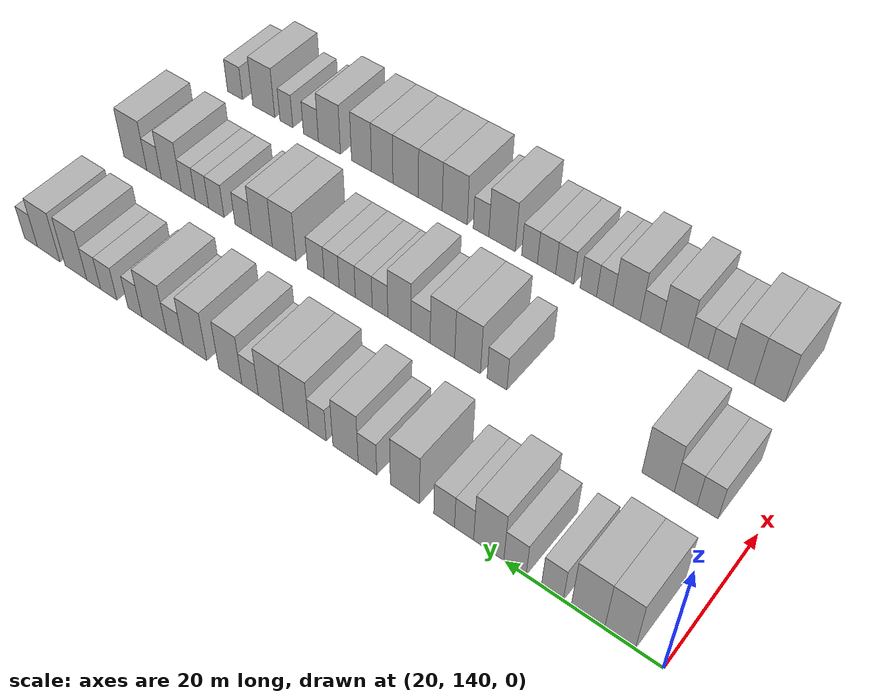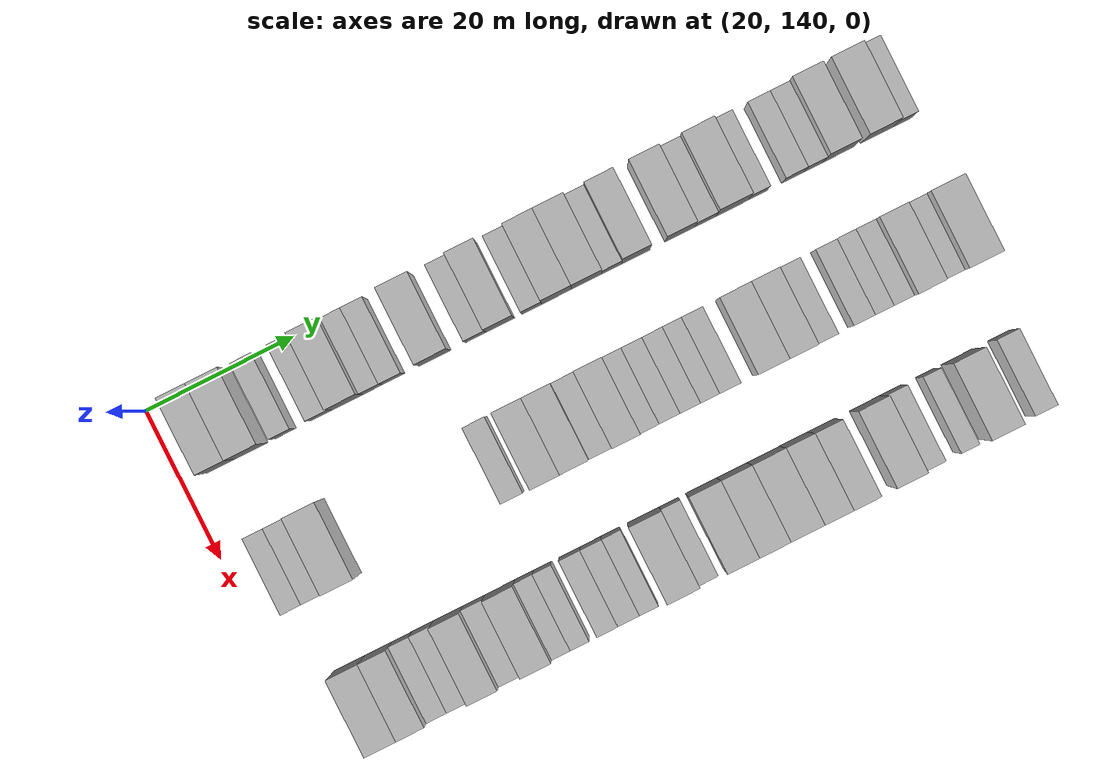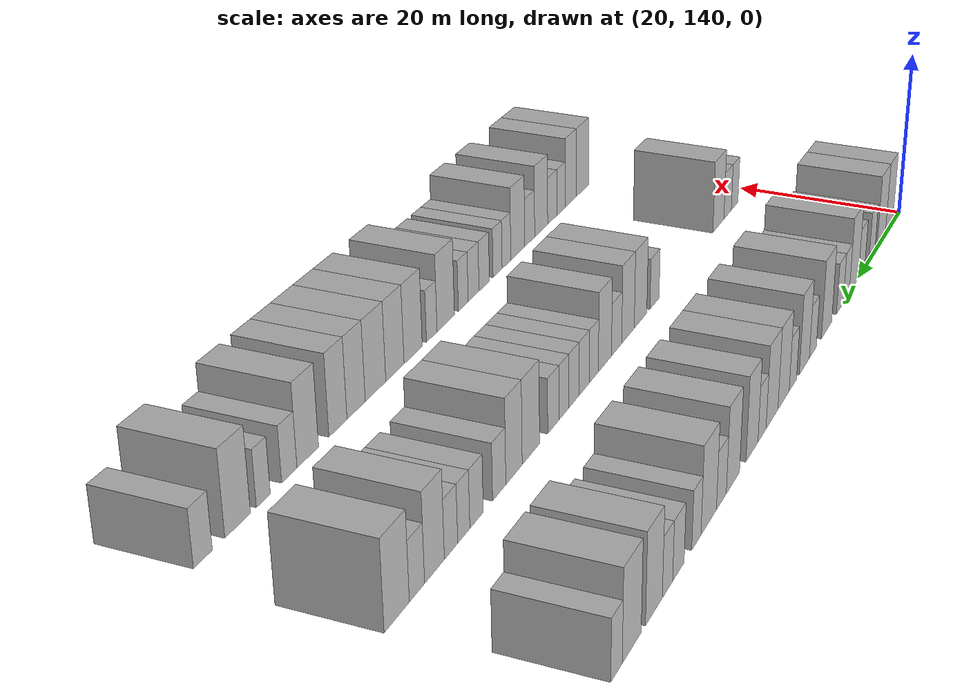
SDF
<sdf version="1.6">
 <world name="default">
  <model name="building_101">
   <static>1</static>
   <pose>25.0000 145.2894 0 0.000000 0.000000 0.000000</pose>
   <link name="link">
    <pose>0 0 4.50 0 0 0</pose>
    <collision name="collision"><geometry><box><size>10.0000 3.7814 9.0000</size></box></geometry></collision>
    <visual name="visual">
     <cast_shadows>0</cast_shadows>
     <geometry><box><size>10.0000 3.7814 9.0000</size></box></geometry>
     <material>
      <script>
       <uri>model://HANNAS_wall/materials/scripts</uri>
       <uri>model://HANNAS_wall/materials/textures</uri>
       <name>vrc/HANNAS_wall</name>
      </script>
     </material>
    </visual>
   </link>
  </model>
  <model name="building_102">
   <static>1</static>
   <pose>25.0000 149.2871 0 0.000000 0.000000 0.000000</pose>
   <link name="link">
    <pose>0 0 4.50 0 0 0</pose>
    <collision name="collision"><geometry><box><size>10.0000 4.2140 9.0000</size></box></geometry></collision>
    <visual name="visual">
     <cast_shadows>0</cast_shadows>
     <geometry><box><size>10.0000 4.2140 9.0000</size></box></geometry>
     <material>
      <script>
       <uri>model://HANNAS_wall/materials/scripts</uri>
       <uri>model://HANNAS_wall/materials/textures</uri>
       <name>vrc/HANNAS_wall</name>
      </script>
     </material>
    </visual>
   </link>
  </model>
  <model name="building_103">
   <static>1</static>
   <pose>25.0000 153.8083 0 0.000000 0.000000 0.000000</pose>
   <link name="link">
    <pose>0 0 3.00 0 0 0</pose>
    <collision name="collision"><geometry><box><size>10.0000 2.8283 6.0000</size></box></geometry></collision>
    <visual name="visual">
     <cast_shadows>0</cast_shadows>
     <geometry><box><size>10.0000 2.8283 6.0000</size></box></geometry>
     <material>
      <script>
       <uri>model://HANNAS_wall/materials/scripts</uri>
       <uri>model://HANNAS_wall/materials/textures</uri>
       <name>vrc/HANNAS_wall</name>
      </script>
     </material>
    </visual>
   </link>
  </model>
  <model name="building_104">
   <static>1</static>
   <pose>25.0000 158.7008 0 0.000000 0.000000 0.000000</pose>
   <link name="link">
    <pose>0 0 3.00 0 0 0</pose>
    <collision name="collision"><geometry><box><size>10.0000 2.9569 6.0000</size></box></geometry></collision>
    <visual name="visual">
     <cast_shadows>0</cast_shadows>
     <geometry><box><size>10.0000 2.9569 6.0000</size></box></geometry>
     <material>
      <script>
       <uri>model://HANNAS_wall/materials/scripts</uri>
       <uri>model://HANNAS_wall/materials/textures</uri>
       <name>vrc/HANNAS_wall</name>
      </script>
     </material>
    </visual>
   </link>
  </model>
  <model name="building_105">
   <static>1</static>
   <pose>25.0000 162.2158 0 0.000000 0.000000 0.000000</pose>
   <link name="link">
    <pose>0 0 4.50 0 0 0</pose>
    <collision name="collision"><geometry><box><size>10.0000 4.0731 9.0000</size></box></geometry></collision>
    <visual name="visual">
     <cast_shadows>0</cast_shadows>
     <geometry><box><size>10.0000 4.0731 9.0000</size></box></geometry>
     <material>
      <script>
       <uri>model://HANNAS_wall/materials/scripts</uri>
       <uri>model://HANNAS_wall/materials/textures</uri>
       <name>vrc/HANNAS_wall</name>
      </script>
     </material>
    </visual>
   </link>
  </model>
  <model name="building_106">
   <static>1</static>
   <pose>25.0000 165.5660 0 0.000000 0.000000 0.000000</pose>
   <link name="link">
    <pose>0 0 3.00 0 0 0</pose>
    <collision name="collision"><geometry><box><size>10.0000 2.6272 6.0000</size></box></geometry></collision>
    <visual name="visual">
     <cast_shadows>0</cast_shadows>
     <geometry><box><size>10.0000 2.6272 6.0000</size></box></geometry>
     <material>
      <script>
       <uri>model://HANNAS_wall/materials/scripts</uri>
       <uri>model://HANNAS_wall/materials/textures</uri>
       <name>vrc/HANNAS_wall</name>
      </script>
     </material>
    </visual>
   </link>
  </model>
  <model name="building_107">
   <static>1</static>
   <pose>25.0000 168.3294 0 0.000000 0.000000 0.000000</pose>
   <link name="link">
    <pose>0 0 3.00 0 0 0</pose>
    <collision name="collision"><geometry><box><size>10.0000 2.8996 6.0000</size></box></geometry></collision>
    <visual name="visual">
     <cast_shadows>0</cast_shadows>
     <geometry><box><size>10.0000 2.8996 6.0000</size></box></geometry>
     <material>
      <script>
       <uri>model://HANNAS_wall/materials/scripts</uri>
       <uri>model://HANNAS_wall/materials/textures</uri>
       <name>vrc/HANNAS_wall</name>
      </script>
     </material>
    </visual>
   </link>
  </model>
  <model name="building_108">
   <static>1</static>
   <pose>25.0000 173.8782 0 0.000000 0.000000 0.000000</pose>
   <link name="link">
    <pose>0 0 4.50 0 0 0</pose>
    <collision name="collision"><geometry><box><size>10.0000 4.1981 9.0000</size></box></geometry></collision>
    <visual name="visual">
     <cast_shadows>0</cast_shadows>
     <geometry><box><size>10.0000 4.1981 9.0000</size></box></geometry>
     <material>
      <script>
       <uri>model://HANNAS_wall/materials/scripts</uri>
       <uri>model://HANNAS_wall/materials/textures</uri>
       <name>vrc/HANNAS_wall</name>
      </script>
     </material>
    </visual>
   </link>
  </model>
  <model name="building_109">
   <static>1</static>
   <pose>25.0000 179.3486 0 0.000000 0.000000 0.000000</pose>
   <link name="link">
    <pose>0 0 3.00 0 0 0</pose>
    <collision name="collision"><geometry><box><size>10.0000 2.7426 6.0000</size></box></geometry></collision>
    <visual name="visual">
     <cast_shadows>0</cast_shadows>
     <geometry><box><size>10.0000 2.7426 6.0000</size></box></geometry>
     <material>
      <script>
       <uri>model://HANNAS_wall/materials/scripts</uri>
       <uri>model://HANNAS_wall/materials/textures</uri>
       <name>vrc/HANNAS_wall</name>
      </script>
     </material>
    </visual>
   </link>
  </model>
  <model name="building_110">
   <static>1</static>
   <pose>25.0000 182.6232 0 0.000000 0.000000 0.000000</pose>
   <link name="link">
    <pose>0 0 4.50 0 0 0</pose>
    <collision name="collision"><geometry><box><size>10.0000 3.8066 9.0000</size></box></geometry></collision>
    <visual name="visual">
     <cast_shadows>0</cast_shadows>
     <geometry><box><size>10.0000 3.8066 9.0000</size></box></geometry>
     <material>
      <script>
       <uri>model://HANNAS_wall/materials/scripts</uri>
       <uri>model://HANNAS_wall/materials/textures</uri>
       <name>vrc/HANNAS_wall</name>
      </script>
     </material>
    </visual>
   </link>
  </model>
  <model name="building_111">
   <static>1</static>
   <pose>25.0000 186.8645 0 0.000000 0.000000 0.000000</pose>
   <link name="link">
    <pose>0 0 3.00 0 0 0</pose>
    <collision name="collision"><geometry><box><size>10.0000 2.6759 6.0000</size></box></geometry></collision>
    <visual name="visual">
     <cast_shadows>0</cast_shadows>
     <geometry><box><size>10.0000 2.6759 6.0000</size></box></geometry>
     <material>
      <script>
       <uri>model://HANNAS_wall/materials/scripts</uri>
       <uri>model://HANNAS_wall/materials/textures</uri>
       <name>vrc/HANNAS_wall</name>
      </script>
     </material>
    </visual>
   </link>
  </model>
  <model name="building_112">
   <static>1</static>
   <pose>25.0000 190.1864 0 0.000000 0.000000 0.000000</pose>
   <link name="link">
    <pose>0 0 4.50 0 0 0</pose>
    <collision name="collision"><geometry><box><size>10.0000 3.9680 9.0000</size></box></geometry></collision>
    <visual name="visual">
     <cast_shadows>0</cast_shadows>
     <geometry><box><size>10.0000 3.9680 9.0000</size></box></geometry>
     <material>
      <script>
       <uri>model://HANNAS_wall/materials/scripts</uri>
       <uri>model://HANNAS_wall/materials/textures</uri>
       <name>vrc/HANNAS_wall</name>
      </script>
     </material>
    </visual>
   </link>
  </model>
  <model name="building_113">
   <static>1</static>
   <pose>25.0000 194.1858 0 0.000000 0.000000 0.000000</pose>
   <link name="link">
    <pose>0 0 4.50 0 0 0</pose>
    <collision name="collision"><geometry><box><size>10.0000 4.0307 9.0000</size></box></geometry></collision>
    <visual name="visual">
     <cast_shadows>0</cast_shadows>
     <geometry><box><size>10.0000 4.0307 9.0000</size></box></geometry>
     <material>
      <script>
       <uri>model://HANNAS_wall/materials/scripts</uri>
       <uri>model://HANNAS_wall/materials/textures</uri>
       <name>vrc/HANNAS_wall</name>
      </script>
     </material>
    </visual>
   </link>
  </model>
  <model name="building_114">
   <static>1</static>
   <pose>25.0000 197.5328 0 0.000000 0.000000 0.000000</pose>
   <link name="link">
    <pose>0 0 3.00 0 0 0</pose>
    <collision name="collision"><geometry><box><size>10.0000 2.6633 6.0000</size></box></geometry></collision>
    <visual name="visual">
     <cast_shadows>0</cast_shadows>
     <geometry><box><size>10.0000 2.6633 6.0000</size></box></geometry>
     <material>
      <script>
       <uri>model://HANNAS_wall/materials/scripts</uri>
       <uri>model://HANNAS_wall/materials/textures</uri>
       <name>vrc/HANNAS_wall</name>
      </script>
     </material>
    </visual>
   </link>
  </model>
  <model name="building_115">
   <static>1</static>
   <pose>25.0000 200.7746 0 0.000000 0.000000 0.000000</pose>
   <link name="link">
    <pose>0 0 4.50 0 0 0</pose>
    <collision name="collision"><geometry><box><size>10.0000 3.8202 9.0000</size></box></geometry></collision>
    <visual name="visual">
     <cast_shadows>0</cast_shadows>
     <geometry><box><size>10.0000 3.8202 9.0000</size></box></geometry>
     <material>
      <script>
       <uri>model://HANNAS_wall/materials/scripts</uri>
       <uri>model://HANNAS_wall/materials/textures</uri>
       <name>vrc/HANNAS_wall</name>
      </script>
     </material>
    </visual>
   </link>
  </model>
  <model name="building_116">
   <static>1</static>
   <pose>25.0000 206.6756 0 0.000000 0.000000 0.000000</pose>
   <link name="link">
    <pose>0 0 4.50 0 0 0</pose>
    <collision name="collision"><geometry><box><size>10.0000 3.9818 9.0000</size></box></geometry></collision>
    <visual name="visual">
     <cast_shadows>0</cast_shadows>
     <geometry><box><size>10.0000 3.9818 9.0000</size></box></geometry>
     <material>
      <script>
       <uri>model://HANNAS_wall/materials/scripts</uri>
       <uri>model://HANNAS_wall/materials/textures</uri>
       <name>vrc/HANNAS_wall</name>
      </script>
     </material>
    </visual>
   </link>
  </model>
  <model name="building_117">
   <static>1</static>
   <pose>25.0000 210.1035 0 0.000000 0.000000 0.000000</pose>
   <link name="link">
    <pose>0 0 3.00 0 0 0</pose>
    <collision name="collision"><geometry><box><size>10.0000 2.8740 6.0000</size></box></geometry></collision>
    <visual name="visual">
     <cast_shadows>0</cast_shadows>
     <geometry><box><size>10.0000 2.8740 6.0000</size></box></geometry>
     <material>
      <script>
       <uri>model://HANNAS_wall/materials/scripts</uri>
       <uri>model://HANNAS_wall/materials/textures</uri>
       <name>vrc/HANNAS_wall</name>
      </script>
     </material>
    </visual>
   </link>
  </model>
  <model name="building_118">
   <static>1</static>
   <pose>25.0000 213.7059 0 0.000000 0.000000 0.000000</pose>
   <link name="link">
    <pose>0 0 4.50 0 0 0</pose>
    <collision name="collision"><geometry><box><size>10.0000 4.3307 9.0000</size></box></geometry></collision>
    <visual name="visual">
     <cast_shadows>0</cast_shadows>
     <geometry><box><size>10.0000 4.3307 9.0000</size></box></geometry>
     <material>
      <script>
       <uri>model://HANNAS_wall/materials/scripts</uri>
       <uri>model://HANNAS_wall/materials/textures</uri>
       <name>vrc/HANNAS_wall</name>
      </script>
     </material>
    </visual>
   </link>
  </model>
  <model name="building_119">
   <static>1</static>
   <pose>25.0000 217.1237 0 0.000000 0.000000 0.000000</pose>
   <link name="link">
    <pose>0 0 3.00 0 0 0</pose>
    <collision name="collision"><geometry><box><size>10.0000 2.5049 6.0000</size></box></geometry></collision>
    <visual name="visual">
     <cast_shadows>0</cast_shadows>
     <geometry><box><size>10.0000 2.5049 6.0000</size></box></geometry>
     <material>
      <script>
       <uri>model://HANNAS_wall/materials/scripts</uri>
       <uri>model://HANNAS_wall/materials/textures</uri>
       <name>vrc/HANNAS_wall</name>
      </script>
     </material>
    </visual>
   </link>
  </model>
  <model name="building_120">
   <static>1</static>
   <pose>25.0000 221.8567 0 0.000000 0.000000 0.000000</pose>
   <link name="link">
    <pose>0 0 3.00 0 0 0</pose>
    <collision name="collision"><geometry><box><size>10.0000 2.9611 6.0000</size></box></geometry></collision>
    <visual name="visual">
     <cast_shadows>0</cast_shadows>
     <geometry><box><size>10.0000 2.9611 6.0000</size></box></geometry>
     <material>
      <script>
       <uri>model://HANNAS_wall/materials/scripts</uri>
       <uri>model://HANNAS_wall/materials/textures</uri>
       <name>vrc/HANNAS_wall</name>
      </script>
     </material>
    </visual>
   </link>
  </model>
  <model name="building_121">
   <static>1</static>
   <pose>25.0000 224.6244 0 0.000000 0.000000 0.000000</pose>
   <link name="link">
    <pose>0 0 3.00 0 0 0</pose>
    <collision name="collision"><geometry><box><size>10.0000 2.5744 6.0000</size></box></geometry></collision>
    <visual name="visual">
     <cast_shadows>0</cast_shadows>
     <geometry><box><size>10.0000 2.5744 6.0000</size></box></geometry>
     <material>
      <script>
       <uri>model://HANNAS_wall/materials/scripts</uri>
       <uri>model://HANNAS_wall/materials/textures</uri>
       <name>vrc/HANNAS_wall</name>
      </script>
     </material>
    </visual>
   </link>
  </model>
  <model name="building_122">
   <static>1</static>
   <pose>25.0000 227.9382 0 0.000000 0.000000 0.000000</pose>
   <link name="link">
    <pose>0 0 4.50 0 0 0</pose>
    <collision name="collision"><geometry><box><size>10.0000 4.0531 9.0000</size></box></geometry></collision>
    <visual name="visual">
     <cast_shadows>0</cast_shadows>
     <geometry><box><size>10.0000 4.0531 9.0000</size></box></geometry>
     <material>
      <script>
       <uri>model://HANNAS_wall/materials/scripts</uri>
       <uri>model://HANNAS_wall/materials/textures</uri>
       <name>vrc/HANNAS_wall</name>
      </script>
     </material>
    </visual>
   </link>
  </model>
  <model name="building_123">
   <static>1</static>
   <pose>25.0000 233.1161 0 0.000000 0.000000 0.000000</pose>
   <link name="link">
    <pose>0 0 4.50 0 0 0</pose>
    <collision name="collision"><geometry><box><size>10.0000 4.3026 9.0000</size></box></geometry></collision>
    <visual name="visual">
     <cast_shadows>0</cast_shadows>
     <geometry><box><size>10.0000 4.3026 9.0000</size></box></geometry>
     <material>
      <script>
       <uri>model://HANNAS_wall/materials/scripts</uri>
       <uri>model://HANNAS_wall/materials/textures</uri>
       <name>vrc/HANNAS_wall</name>
      </script>
     </material>
    </visual>
   </link>
  </model>
  <model name="building_124">
   <static>1</static>
   <pose>25.0000 236.5218 0 0.000000 0.000000 0.000000</pose>
   <link name="link">
    <pose>0 0 3.00 0 0 0</pose>
    <collision name="collision"><geometry><box><size>10.0000 2.5089 6.0000</size></box></geometry></collision>
    <visual name="visual">
     <cast_shadows>0</cast_shadows>
     <geometry><box><size>10.0000 2.5089 6.0000</size></box></geometry>
     <material>
      <script>
       <uri>model://HANNAS_wall/materials/scripts</uri>
       <uri>model://HANNAS_wall/materials/textures</uri>
       <name>vrc/HANNAS_wall</name>
      </script>
     </material>
    </visual>
   </link>
  </model>
  <model name="building_211">
   <static>1</static>
   <pose>44.0000 145.8019 0 0.000000 0.000000 0.000000</pose>
   <link name="link">
    <pose>0 0 3.00 0 0 0</pose>
    <collision name="collision"><geometry><box><size>10.0000 2.6907 6.0000</size></box></geometry></collision>
    <visual name="visual">
     <cast_shadows>0</cast_shadows>
     <geometry><box><size>10.0000 2.6907 6.0000</size></box></geometry>
     <material>
      <script>
       <uri>model://HANNAS_wall/materials/scripts</uri>
       <uri>model://HANNAS_wall/materials/textures</uri>
       <name>vrc/HANNAS_wall</name>
      </script>
     </material>
    </visual>
   </link>
  </model>
  <model name="building_212">
   <static>1</static>
   <pose>44.0000 148.6254 0 0.000000 0.000000 0.000000</pose>
   <link name="link">
    <pose>0 0 3.00 0 0 0</pose>
    <collision name="collision"><geometry><box><size>10.0000 2.9563 6.0000</size></box></geometry></collision>
    <visual name="visual">
     <cast_shadows>0</cast_shadows>
     <geometry><box><size>10.0000 2.9563 6.0000</size></box></geometry>
     <material>
      <script>
       <uri>model://HANNAS_wall/materials/scripts</uri>
       <uri>model://HANNAS_wall/materials/textures</uri>
       <name>vrc/HANNAS_wall</name>
      </script>
     </material>
    </visual>
   </link>
  </model>
  <model name="building_213">
   <static>1</static>
   <pose>44.0000 152.2397 0 0.000000 0.000000 0.000000</pose>
   <link name="link">
    <pose>0 0 4.50 0 0 0</pose>
    <collision name="collision"><geometry><box><size>10.0000 4.2723 9.0000</size></box></geometry></collision>
    <visual name="visual">
     <cast_shadows>0</cast_shadows>
     <geometry><box><size>10.0000 4.2723 9.0000</size></box></geometry>
     <material>
      <script>
       <uri>model://HANNAS_wall/materials/scripts</uri>
       <uri>model://HANNAS_wall/materials/textures</uri>
       <name>vrc/HANNAS_wall</name>
      </script>
     </material>
    </visual>
   </link>
  </model>
  <model name="building_214">
   <static>1</static>
   <pose>44.0000 174.7750 0 0.000000 0.000000 0.000000</pose>
   <link name="link">
    <pose>0 0 3.00 0 0 0</pose>
    <collision name="collision"><geometry><box><size>10.0000 2.9327 6.0000</size></box></geometry></collision>
    <visual name="visual">
     <cast_shadows>0</cast_shadows>
     <geometry><box><size>10.0000 2.9327 6.0000</size></box></geometry>
     <material>
      <script>
       <uri>model://HANNAS_wall/materials/scripts</uri>
       <uri>model://HANNAS_wall/materials/textures</uri>
       <name>vrc/HANNAS_wall</name>
      </script>
     </material>
    </visual>
   </link>
  </model>
  <model name="building_215">
   <static>1</static>
   <pose>44.0000 179.1906 0 0.000000 0.000000 0.000000</pose>
   <link name="link">
    <pose>0 0 4.50 0 0 0</pose>
    <collision name="collision"><geometry><box><size>10.0000 3.8986 9.0000</size></box></geometry></collision>
    <visual name="visual">
     <cast_shadows>0</cast_shadows>
     <geometry><box><size>10.0000 3.8986 9.0000</size></box></geometry>
     <material>
      <script>
       <uri>model://HANNAS_wall/materials/scripts</uri>
       <uri>model://HANNAS_wall/materials/textures</uri>
       <name>vrc/HANNAS_wall</name>
      </script>
     </material>
    </visual>
   </link>
  </model>
  <model name="building_216">
   <static>1</static>
   <pose>44.0000 183.0331 0 0.000000 0.000000 0.000000</pose>
   <link name="link">
    <pose>0 0 4.50 0 0 0</pose>
    <collision name="collision"><geometry><box><size>10.0000 3.7863 9.0000</size></box></geometry></collision>
    <visual name="visual">
     <cast_shadows>0</cast_shadows>
     <geometry><box><size>10.0000 3.7863 9.0000</size></box></geometry>
     <material>
      <script>
       <uri>model://HANNAS_wall/materials/scripts</uri>
       <uri>model://HANNAS_wall/materials/textures</uri>
       <name>vrc/HANNAS_wall</name>
      </script>
     </material>
    </visual>
   </link>
  </model>
  <model name="building_217">
   <static>1</static>
   <pose>44.0000 186.4161 0 0.000000 0.000000 0.000000</pose>
   <link name="link">
    <pose>0 0 3.00 0 0 0</pose>
    <collision name="collision"><geometry><box><size>10.0000 2.9795 6.0000</size></box></geometry></collision>
    <visual name="visual">
     <cast_shadows>0</cast_shadows>
     <geometry><box><size>10.0000 2.9795 6.0000</size></box></geometry>
     <material>
      <script>
       <uri>model://HANNAS_wall/materials/scripts</uri>
       <uri>model://HANNAS_wall/materials/textures</uri>
       <name>vrc/HANNAS_wall</name>
      </script>
     </material>
    </visual>
   </link>
  </model>
  <model name="building_218">
   <static>1</static>
   <pose>44.0000 189.7617 0 0.000000 0.000000 0.000000</pose>
   <link name="link">
    <pose>0 0 4.50 0 0 0</pose>
    <collision name="collision"><geometry><box><size>10.0000 3.7117 9.0000</size></box></geometry></collision>
    <visual name="visual">
     <cast_shadows>0</cast_shadows>
     <geometry><box><size>10.0000 3.7117 9.0000</size></box></geometry>
     <material>
      <script>
       <uri>model://HANNAS_wall/materials/scripts</uri>
       <uri>model://HANNAS_wall/materials/textures</uri>
       <name>vrc/HANNAS_wall</name>
      </script>
     </material>
    </visual>
   </link>
  </model>
  <model name="building_219">
   <static>1</static>
   <pose>44.0000 192.8788 0 0.000000 0.000000 0.000000</pose>
   <link name="link">
    <pose>0 0 3.00 0 0 0</pose>
    <collision name="collision"><geometry><box><size>10.0000 2.5225 6.0000</size></box></geometry></collision>
    <visual name="visual">
     <cast_shadows>0</cast_shadows>
     <geometry><box><size>10.0000 2.5225 6.0000</size></box></geometry>
     <material>
      <script>
       <uri>model://HANNAS_wall/materials/scripts</uri>
       <uri>model://HANNAS_wall/materials/textures</uri>
       <name>vrc/HANNAS_wall</name>
      </script>
     </material>
    </visual>
   </link>
  </model>
  <model name="building_220">
   <static>1</static>
   <pose>44.0000 195.5178 0 0.000000 0.000000 0.000000</pose>
   <link name="link">
    <pose>0 0 3.00 0 0 0</pose>
    <collision name="collision"><geometry><box><size>10.0000 2.7556 6.0000</size></box></geometry></collision>
    <visual name="visual">
     <cast_shadows>0</cast_shadows>
     <geometry><box><size>10.0000 2.7556 6.0000</size></box></geometry>
     <material>
      <script>
       <uri>model://HANNAS_wall/materials/scripts</uri>
       <uri>model://HANNAS_wall/materials/textures</uri>
       <name>vrc/HANNAS_wall</name>
      </script>
     </material>
    </visual>
   </link>
  </model>
  <model name="building_221">
   <static>1</static>
   <pose>44.0000 198.2379 0 0.000000 0.000000 0.000000</pose>
   <link name="link">
    <pose>0 0 3.00 0 0 0</pose>
    <collision name="collision"><geometry><box><size>10.0000 2.6845 6.0000</size></box></geometry></collision>
    <visual name="visual">
     <cast_shadows>0</cast_shadows>
     <geometry><box><size>10.0000 2.6845 6.0000</size></box></geometry>
     <material>
      <script>
       <uri>model://HANNAS_wall/materials/scripts</uri>
       <uri>model://HANNAS_wall/materials/textures</uri>
       <name>vrc/HANNAS_wall</name>
      </script>
     </material>
    </visual>
   </link>
  </model>
  <model name="building_222">
   <static>1</static>
   <pose>44.0000 200.8382 0 0.000000 0.000000 0.000000</pose>
   <link name="link">
    <pose>0 0 3.00 0 0 0</pose>
    <collision name="collision"><geometry><box><size>10.0000 2.5161 6.0000</size></box></geometry></collision>
    <visual name="visual">
     <cast_shadows>0</cast_shadows>
     <geometry><box><size>10.0000 2.5161 6.0000</size></box></geometry>
     <material>
      <script>
       <uri>model://HANNAS_wall/materials/scripts</uri>
       <uri>model://HANNAS_wall/materials/textures</uri>
       <name>vrc/HANNAS_wall</name>
      </script>
     </material>
    </visual>
   </link>
  </model>
  <model name="building_223">
   <static>1</static>
   <pose>44.0000 203.5032 0 0.000000 0.000000 0.000000</pose>
   <link name="link">
    <pose>0 0 3.00 0 0 0</pose>
    <collision name="collision"><geometry><box><size>10.0000 2.8139 6.0000</size></box></geometry></collision>
    <visual name="visual">
     <cast_shadows>0</cast_shadows>
     <geometry><box><size>10.0000 2.8139 6.0000</size></box></geometry>
     <material>
      <script>
       <uri>model://HANNAS_wall/materials/scripts</uri>
       <uri>model://HANNAS_wall/materials/textures</uri>
       <name>vrc/HANNAS_wall</name>
      </script>
     </material>
    </visual>
   </link>
  </model>
  <model name="building_224">
   <static>1</static>
   <pose>44.0000 208.9691 0 0.000000 0.000000 0.000000</pose>
   <link name="link">
    <pose>0 0 4.50 0 0 0</pose>
    <collision name="collision"><geometry><box><size>10.0000 4.1181 9.0000</size></box></geometry></collision>
    <visual name="visual">
     <cast_shadows>0</cast_shadows>
     <geometry><box><size>10.0000 4.1181 9.0000</size></box></geometry>
     <material>
      <script>
       <uri>model://HANNAS_wall/materials/scripts</uri>
       <uri>model://HANNAS_wall/materials/textures</uri>
       <name>vrc/HANNAS_wall</name>
      </script>
     </material>
    </visual>
   </link>
  </model>
  <model name="building_225">
   <static>1</static>
   <pose>44.0000 212.8925 0 0.000000 0.000000 0.000000</pose>
   <link name="link">
    <pose>0 0 4.50 0 0 0</pose>
    <collision name="collision"><geometry><box><size>10.0000 3.7287 9.0000</size></box></geometry></collision>
    <visual name="visual">
     <cast_shadows>0</cast_shadows>
     <geometry><box><size>10.0000 3.7287 9.0000</size></box></geometry>
     <material>
      <script>
       <uri>model://HANNAS_wall/materials/scripts</uri>
       <uri>model://HANNAS_wall/materials/textures</uri>
       <name>vrc/HANNAS_wall</name>
      </script>
     </material>
    </visual>
   </link>
  </model>
  <model name="building_226">
   <static>1</static>
   <pose>44.0000 216.2244 0 0.000000 0.000000 0.000000</pose>
   <link name="link">
    <pose>0 0 3.00 0 0 0</pose>
    <collision name="collision"><geometry><box><size>10.0000 2.9351 6.0000</size></box></geometry></collision>
    <visual name="visual">
     <cast_shadows>0</cast_shadows>
     <geometry><box><size>10.0000 2.9351 6.0000</size></box></geometry>
     <material>
      <script>
       <uri>model://HANNAS_wall/materials/scripts</uri>
       <uri>model://HANNAS_wall/materials/textures</uri>
       <name>vrc/HANNAS_wall</name>
      </script>
     </material>
    </visual>
   </link>
  </model>
  <model name="building_227">
   <static>1</static>
   <pose>44.0000 221.1040 0 0.000000 0.000000 0.000000</pose>
   <link name="link">
    <pose>0 0 3.00 0 0 0</pose>
    <collision name="collision"><geometry><box><size>10.0000 2.8240 6.0000</size></box></geometry></collision>
    <visual name="visual">
     <cast_shadows>0</cast_shadows>
     <geometry><box><size>10.0000 2.8240 6.0000</size></box></geometry>
     <material>
      <script>
       <uri>model://HANNAS_wall/materials/scripts</uri>
       <uri>model://HANNAS_wall/materials/textures</uri>
       <name>vrc/HANNAS_wall</name>
      </script>
     </material>
    </visual>
   </link>
  </model>
  <model name="building_228">
   <static>1</static>
   <pose>44.0000 223.7551 0 0.000000 0.000000 0.000000</pose>
   <link name="link">
    <pose>0 0 3.00 0 0 0</pose>
    <collision name="collision"><geometry><box><size>10.0000 2.4782 6.0000</size></box></geometry></collision>
    <visual name="visual">
     <cast_shadows>0</cast_shadows>
     <geometry><box><size>10.0000 2.4782 6.0000</size></box></geometry>
     <material>
      <script>
       <uri>model://HANNAS_wall/materials/scripts</uri>
       <uri>model://HANNAS_wall/materials/textures</uri>
       <name>vrc/HANNAS_wall</name>
      </script>
     </material>
    </visual>
   </link>
  </model>
  <model name="building_229">
   <static>1</static>
   <pose>44.0000 226.3191 0 0.000000 0.000000 0.000000</pose>
   <link name="link">
    <pose>0 0 3.00 0 0 0</pose>
    <collision name="collision"><geometry><box><size>10.0000 2.6498 6.0000</size></box></geometry></collision>
    <visual name="visual">
     <cast_shadows>0</cast_shadows>
     <geometry><box><size>10.0000 2.6498 6.0000</size></box></geometry>
     <material>
      <script>
       <uri>model://HANNAS_wall/materials/scripts</uri>
       <uri>model://HANNAS_wall/materials/textures</uri>
       <name>vrc/HANNAS_wall</name>
      </script>
     </material>
    </visual>
   </link>
  </model>
  <model name="building_230">
   <static>1</static>
   <pose>44.0000 229.5467 0 0.000000 0.000000 0.000000</pose>
   <link name="link">
    <pose>0 0 4.50 0 0 0</pose>
    <collision name="collision"><geometry><box><size>10.0000 3.8054 9.0000</size></box></geometry></collision>
    <visual name="visual">
     <cast_shadows>0</cast_shadows>
     <geometry><box><size>10.0000 3.8054 9.0000</size></box></geometry>
     <material>
      <script>
       <uri>model://HANNAS_wall/materials/scripts</uri>
       <uri>model://HANNAS_wall/materials/textures</uri>
       <name>vrc/HANNAS_wall</name>
      </script>
     </material>
    </visual>
   </link>
  </model>
  <model name="building_231">
   <static>1</static>
   <pose>44.0000 232.8650 0 0.000000 0.000000 0.000000</pose>
   <link name="link">
    <pose>0 0 3.00 0 0 0</pose>
    <collision name="collision"><geometry><box><size>10.0000 2.8312 6.0000</size></box></geometry></collision>
    <visual name="visual">
     <cast_shadows>0</cast_shadows>
     <geometry><box><size>10.0000 2.8312 6.0000</size></box></geometry>
     <material>
      <script>
       <uri>model://HANNAS_wall/materials/scripts</uri>
       <uri>model://HANNAS_wall/materials/textures</uri>
       <name>vrc/HANNAS_wall</name>
      </script>
     </material>
    </visual>
   </link>
  </model>
  <model name="building_232">
   <static>1</static>
   <pose>44.0000 236.5291 0 0.000000 0.000000 0.000000</pose>
   <link name="link">
    <pose>0 0 4.50 0 0 0</pose>
    <collision name="collision"><geometry><box><size>10.0000 4.4969 9.0000</size></box></geometry></collision>
    <visual name="visual">
     <cast_shadows>0</cast_shadows>
     <geometry><box><size>10.0000 4.4969 9.0000</size></box></geometry>
     <material>
      <script>
       <uri>model://HANNAS_wall/materials/scripts</uri>
       <uri>model://HANNAS_wall/materials/textures</uri>
       <name>vrc/HANNAS_wall</name>
      </script>
     </material>
    </visual>
   </link>
  </model>
  <model name="building_327">
   <static>1</static>
   <pose>63.0000 148.2934 0 0.000000 0.000000 0.000000</pose>
   <link name="link">
    <pose>0 0 4.50 0 0 0</pose>
    <collision name="collision"><geometry><box><size>10.0000 4.1395 9.0000</size></box></geometry></collision>
    <visual name="visual">
     <cast_shadows>0</cast_shadows>
     <geometry><box><size>10.0000 4.1395 9.0000</size></box></geometry>
     <material>
      <script>
       <uri>model://HANNAS_wall/materials/scripts</uri>
       <uri>model://HANNAS_wall/materials/textures</uri>
       <name>vrc/HANNAS_wall</name>
      </script>
     </material>
    </visual>
   </link>
  </model>
  <model name="building_328">
   <static>1</static>
   <pose>63.0000 152.1862 0 0.000000 0.000000 0.000000</pose>
   <link name="link">
    <pose>0 0 4.50 0 0 0</pose>
    <collision name="collision"><geometry><box><size>10.0000 3.6460 9.0000</size></box></geometry></collision>
    <visual name="visual">
     <cast_shadows>0</cast_shadows>
     <geometry><box><size>10.0000 3.6460 9.0000</size></box></geometry>
     <material>
      <script>
       <uri>model://HANNAS_wall/materials/scripts</uri>
       <uri>model://HANNAS_wall/materials/textures</uri>
       <name>vrc/HANNAS_wall</name>
      </script>
     </material>
    </visual>
   </link>
  </model>
  <model name="building_329">
   <static>1</static>
   <pose>63.0000 155.3519 0 0.000000 0.000000 0.000000</pose>
   <link name="link">
    <pose>0 0 3.00 0 0 0</pose>
    <collision name="collision"><geometry><box><size>10.0000 2.6855 6.0000</size></box></geometry></collision>
    <visual name="visual">
     <cast_shadows>0</cast_shadows>
     <geometry><box><size>10.0000 2.6855 6.0000</size></box></geometry>
     <material>
      <script>
       <uri>model://HANNAS_wall/materials/scripts</uri>
       <uri>model://HANNAS_wall/materials/textures</uri>
       <name>vrc/HANNAS_wall</name>
      </script>
     </material>
    </visual>
   </link>
  </model>
  <model name="building_330">
   <static>1</static>
   <pose>63.0000 158.1079 0 0.000000 0.000000 0.000000</pose>
   <link name="link">
    <pose>0 0 3.00 0 0 0</pose>
    <collision name="collision"><geometry><box><size>10.0000 2.8265 6.0000</size></box></geometry></collision>
    <visual name="visual">
     <cast_shadows>0</cast_shadows>
     <geometry><box><size>10.0000 2.8265 6.0000</size></box></geometry>
     <material>
      <script>
       <uri>model://HANNAS_wall/materials/scripts</uri>
       <uri>model://HANNAS_wall/materials/textures</uri>
       <name>vrc/HANNAS_wall</name>
      </script>
     </material>
    </visual>
   </link>
  </model>
  <model name="building_331">
   <static>1</static>
   <pose>63.0000 161.5038 0 0.000000 0.000000 0.000000</pose>
   <link name="link">
    <pose>0 0 4.50 0 0 0</pose>
    <collision name="collision"><geometry><box><size>10.0000 3.9652 9.0000</size></box></geometry></collision>
    <visual name="visual">
     <cast_shadows>0</cast_shadows>
     <geometry><box><size>10.0000 3.9652 9.0000</size></box></geometry>
     <material>
      <script>
       <uri>model://HANNAS_wall/materials/scripts</uri>
       <uri>model://HANNAS_wall/materials/textures</uri>
       <name>vrc/HANNAS_wall</name>
      </script>
     </material>
    </visual>
   </link>
  </model>
  <model name="building_332">
   <static>1</static>
   <pose>63.0000 164.9573 0 0.000000 0.000000 0.000000</pose>
   <link name="link">
    <pose>0 0 3.00 0 0 0</pose>
    <collision name="collision"><geometry><box><size>10.0000 2.9417 6.0000</size></box></geometry></collision>
    <visual name="visual">
     <cast_shadows>0</cast_shadows>
     <geometry><box><size>10.0000 2.9417 6.0000</size></box></geometry>
     <material>
      <script>
       <uri>model://HANNAS_wall/materials/scripts</uri>
       <uri>model://HANNAS_wall/materials/textures</uri>
       <name>vrc/HANNAS_wall</name>
      </script>
     </material>
    </visual>
   </link>
  </model>
  <model name="building_333">
   <static>1</static>
   <pose>63.0000 168.4373 0 0.000000 0.000000 0.000000</pose>
   <link name="link">
    <pose>0 0 4.50 0 0 0</pose>
    <collision name="collision"><geometry><box><size>10.0000 4.0184 9.0000</size></box></geometry></collision>
    <visual name="visual">
     <cast_shadows>0</cast_shadows>
     <geometry><box><size>10.0000 4.0184 9.0000</size></box></geometry>
     <material>
      <script>
       <uri>model://HANNAS_wall/materials/scripts</uri>
       <uri>model://HANNAS_wall/materials/textures</uri>
       <name>vrc/HANNAS_wall</name>
      </script>
     </material>
    </visual>
   </link>
  </model>
  <model name="building_334">
   <static>1</static>
   <pose>63.0000 171.6724 0 0.000000 0.000000 0.000000</pose>
   <link name="link">
    <pose>0 0 3.00 0 0 0</pose>
    <collision name="collision"><geometry><box><size>10.0000 2.4519 6.0000</size></box></geometry></collision>
    <visual name="visual">
     <cast_shadows>0</cast_shadows>
     <geometry><box><size>10.0000 2.4519 6.0000</size></box></geometry>
     <material>
      <script>
       <uri>model://HANNAS_wall/materials/scripts</uri>
       <uri>model://HANNAS_wall/materials/textures</uri>
       <name>vrc/HANNAS_wall</name>
      </script>
     </material>
    </visual>
   </link>
  </model>
  <model name="building_335">
   <static>1</static>
   <pose>63.0000 174.1390 0 0.000000 0.000000 0.000000</pose>
   <link name="link">
    <pose>0 0 3.00 0 0 0</pose>
    <collision name="collision"><geometry><box><size>10.0000 2.4814 6.0000</size></box></geometry></collision>
    <visual name="visual">
     <cast_shadows>0</cast_shadows>
     <geometry><box><size>10.0000 2.4814 6.0000</size></box></geometry>
     <material>
      <script>
       <uri>model://HANNAS_wall/materials/scripts</uri>
       <uri>model://HANNAS_wall/materials/textures</uri>
       <name>vrc/HANNAS_wall</name>
      </script>
     </material>
    </visual>
   </link>
  </model>
  <model name="building_336">
   <static>1</static>
   <pose>63.0000 177.7651 0 0.000000 0.000000 0.000000</pose>
   <link name="link">
    <pose>0 0 3.00 0 0 0</pose>
    <collision name="collision"><geometry><box><size>10.0000 2.7708 6.0000</size></box></geometry></collision>
    <visual name="visual">
     <cast_shadows>0</cast_shadows>
     <geometry><box><size>10.0000 2.7708 6.0000</size></box></geometry>
     <material>
      <script>
       <uri>model://HANNAS_wall/materials/scripts</uri>
       <uri>model://HANNAS_wall/materials/textures</uri>
       <name>vrc/HANNAS_wall</name>
      </script>
     </material>
    </visual>
   </link>
  </model>
  <model name="building_337">
   <static>1</static>
   <pose>63.0000 180.5769 0 0.000000 0.000000 0.000000</pose>
   <link name="link">
    <pose>0 0 3.00 0 0 0</pose>
    <collision name="collision"><geometry><box><size>10.0000 2.8527 6.0000</size></box></geometry></collision>
    <visual name="visual">
     <cast_shadows>0</cast_shadows>
     <geometry><box><size>10.0000 2.8527 6.0000</size></box></geometry>
     <material>
      <script>
       <uri>model://HANNAS_wall/materials/scripts</uri>
       <uri>model://HANNAS_wall/materials/textures</uri>
       <name>vrc/HANNAS_wall</name>
      </script>
     </material>
    </visual>
   </link>
  </model>
  <model name="building_338">
   <static>1</static>
   <pose>63.0000 183.2537 0 0.000000 0.000000 0.000000</pose>
   <link name="link">
    <pose>0 0 3.00 0 0 0</pose>
    <collision name="collision"><geometry><box><size>10.0000 2.5010 6.0000</size></box></geometry></collision>
    <visual name="visual">
     <cast_shadows>0</cast_shadows>
     <geometry><box><size>10.0000 2.5010 6.0000</size></box></geometry>
     <material>
      <script>
       <uri>model://HANNAS_wall/materials/scripts</uri>
       <uri>model://HANNAS_wall/materials/textures</uri>
       <name>vrc/HANNAS_wall</name>
      </script>
     </material>
    </visual>
   </link>
  </model>
  <model name="building_339">
   <static>1</static>
   <pose>63.0000 187.6432 0 0.000000 0.000000 0.000000</pose>
   <link name="link">
    <pose>0 0 4.50 0 0 0</pose>
    <collision name="collision"><geometry><box><size>10.0000 4.2779 9.0000</size></box></geometry></collision>
    <visual name="visual">
     <cast_shadows>0</cast_shadows>
     <geometry><box><size>10.0000 4.2779 9.0000</size></box></geometry>
     <material>
      <script>
       <uri>model://HANNAS_wall/materials/scripts</uri>
       <uri>model://HANNAS_wall/materials/textures</uri>
       <name>vrc/HANNAS_wall</name>
      </script>
     </material>
    </visual>
   </link>
  </model>
  <model name="building_340">
   <static>1</static>
   <pose>63.0000 191.0561 0 0.000000 0.000000 0.000000</pose>
   <link name="link">
    <pose>0 0 3.00 0 0 0</pose>
    <collision name="collision"><geometry><box><size>10.0000 2.5479 6.0000</size></box></geometry></collision>
    <visual name="visual">
     <cast_shadows>0</cast_shadows>
     <geometry><box><size>10.0000 2.5479 6.0000</size></box></geometry>
     <material>
      <script>
       <uri>model://HANNAS_wall/materials/scripts</uri>
       <uri>model://HANNAS_wall/materials/textures</uri>
       <name>vrc/HANNAS_wall</name>
      </script>
     </material>
    </visual>
   </link>
  </model>
  <model name="building_341">
   <static>1</static>
   <pose>63.0000 195.4245 0 0.000000 0.000000 0.000000</pose>
   <link name="link">
    <pose>0 0 4.50 0 0 0</pose>
    <collision name="collision"><geometry><box><size>10.0000 4.1888 9.0000</size></box></geometry></collision>
    <visual name="visual">
     <cast_shadows>0</cast_shadows>
     <geometry><box><size>10.0000 4.1888 9.0000</size></box></geometry>
     <material>
      <script>
       <uri>model://HANNAS_wall/materials/scripts</uri>
       <uri>model://HANNAS_wall/materials/textures</uri>
       <name>vrc/HANNAS_wall</name>
      </script>
     </material>
    </visual>
   </link>
  </model>
  <model name="building_342">
   <static>1</static>
   <pose>63.0000 199.5483 0 0.000000 0.000000 0.000000</pose>
   <link name="link">
    <pose>0 0 4.50 0 0 0</pose>
    <collision name="collision"><geometry><box><size>10.0000 4.0589 9.0000</size></box></geometry></collision>
    <visual name="visual">
     <cast_shadows>0</cast_shadows>
     <geometry><box><size>10.0000 4.0589 9.0000</size></box></geometry>
     <material>
      <script>
       <uri>model://HANNAS_wall/materials/scripts</uri>
       <uri>model://HANNAS_wall/materials/textures</uri>
       <name>vrc/HANNAS_wall</name>
      </script>
     </material>
    </visual>
   </link>
  </model>
  <model name="building_343">
   <static>1</static>
   <pose>63.0000 203.7769 0 0.000000 0.000000 0.000000</pose>
   <link name="link">
    <pose>0 0 4.50 0 0 0</pose>
    <collision name="collision"><geometry><box><size>10.0000 4.3982 9.0000</size></box></geometry></collision>
    <visual name="visual">
     <cast_shadows>0</cast_shadows>
     <geometry><box><size>10.0000 4.3982 9.0000</size></box></geometry>
     <material>
      <script>
       <uri>model://HANNAS_wall/materials/scripts</uri>
       <uri>model://HANNAS_wall/materials/textures</uri>
       <name>vrc/HANNAS_wall</name>
      </script>
     </material>
    </visual>
   </link>
  </model>
  <model name="building_344">
   <static>1</static>
   <pose>63.0000 207.8560 0 0.000000 0.000000 0.000000</pose>
   <link name="link">
    <pose>0 0 4.50 0 0 0</pose>
    <collision name="collision"><geometry><box><size>10.0000 3.7601 9.0000</size></box></geometry></collision>
    <visual name="visual">
     <cast_shadows>0</cast_shadows>
     <geometry><box><size>10.0000 3.7601 9.0000</size></box></geometry>
     <material>
      <script>
       <uri>model://HANNAS_wall/materials/scripts</uri>
       <uri>model://HANNAS_wall/materials/textures</uri>
       <name>vrc/HANNAS_wall</name>
      </script>
     </material>
    </visual>
   </link>
  </model>
  <model name="building_345">
   <static>1</static>
   <pose>63.0000 211.5364 0 0.000000 0.000000 0.000000</pose>
   <link name="link">
    <pose>0 0 4.50 0 0 0</pose>
    <collision name="collision"><geometry><box><size>10.0000 3.6007 9.0000</size></box></geometry></collision>
    <visual name="visual">
     <cast_shadows>0</cast_shadows>
     <geometry><box><size>10.0000 3.6007 9.0000</size></box></geometry>
     <material>
      <script>
       <uri>model://HANNAS_wall/materials/scripts</uri>
       <uri>model://HANNAS_wall/materials/textures</uri>
       <name>vrc/HANNAS_wall</name>
      </script>
     </material>
    </visual>
   </link>
  </model>
  <model name="building_346">
   <static>1</static>
   <pose>63.0000 217.3704 0 0.000000 0.000000 0.000000</pose>
   <link name="link">
    <pose>0 0 4.50 0 0 0</pose>
    <collision name="collision"><geometry><box><size>10.0000 4.0672 9.0000</size></box></geometry></collision>
    <visual name="visual">
     <cast_shadows>0</cast_shadows>
     <geometry><box><size>10.0000 4.0672 9.0000</size></box></geometry>
     <material>
      <script>
       <uri>model://HANNAS_wall/materials/scripts</uri>
       <uri>model://HANNAS_wall/materials/textures</uri>
       <name>vrc/HANNAS_wall</name>
      </script>
     </material>
    </visual>
   </link>
  </model>
  <model name="building_347">
   <static>1</static>
   <pose>63.0000 220.8037 0 0.000000 0.000000 0.000000</pose>
   <link name="link">
    <pose>0 0 3.00 0 0 0</pose>
    <collision name="collision"><geometry><box><size>10.0000 2.7993 6.0000</size></box></geometry></collision>
    <visual name="visual">
     <cast_shadows>0</cast_shadows>
     <geometry><box><size>10.0000 2.7993 6.0000</size></box></geometry>
     <material>
      <script>
       <uri>model://HANNAS_wall/materials/scripts</uri>
       <uri>model://HANNAS_wall/materials/textures</uri>
       <name>vrc/HANNAS_wall</name>
      </script>
     </material>
    </visual>
   </link>
  </model>
  <model name="building_348">
   <static>1</static>
   <pose>63.0000 225.4210 0 0.000000 0.000000 0.000000</pose>
   <link name="link">
    <pose>0 0 3.00 0 0 0</pose>
    <collision name="collision"><geometry><box><size>10.0000 2.4354 6.0000</size></box></geometry></collision>
    <visual name="visual">
     <cast_shadows>0</cast_shadows>
     <geometry><box><size>10.0000 2.4354 6.0000</size></box></geometry>
     <material>
      <script>
       <uri>model://HANNAS_wall/materials/scripts</uri>
       <uri>model://HANNAS_wall/materials/textures</uri>
       <name>vrc/HANNAS_wall</name>
      </script>
     </material>
    </visual>
   </link>
  </model>
  <model name="building_349">
   <static>1</static>
   <pose>63.0000 229.7705 0 0.000000 0.000000 0.000000</pose>
   <link name="link">
    <pose>0 0 4.50 0 0 0</pose>
    <collision name="collision"><geometry><box><size>10.0000 4.2636 9.0000</size></box></geometry></collision>
    <visual name="visual">
     <cast_shadows>0</cast_shadows>
     <geometry><box><size>10.0000 4.2636 9.0000</size></box></geometry>
     <material>
      <script>
       <uri>model://HANNAS_wall/materials/scripts</uri>
       <uri>model://HANNAS_wall/materials/textures</uri>
       <name>vrc/HANNAS_wall</name>
      </script>
     </material>
    </visual>
   </link>
  </model>
  <model name="building_350">
   <static>1</static>
   <pose>63.0000 235.3915 0 0.000000 0.000000 0.000000</pose>
   <link name="link">
    <pose>0 0 3.00 0 0 0</pose>
    <collision name="collision"><geometry><box><size>10.0000 2.9783 6.0000</size></box></geometry></collision>
    <visual name="visual">
     <cast_shadows>0</cast_shadows>
     <geometry><box><size>10.0000 2.9783 6.0000</size></box></geometry>
     <material>
      <script>
       <uri>model://HANNAS_wall/materials/scripts</uri>
       <uri>model://HANNAS_wall/materials/textures</uri>
       <name>vrc/HANNAS_wall</name>
      </script>
     </material>
    </visual>
   </link>
  </model>
 </world>
</sdf>
